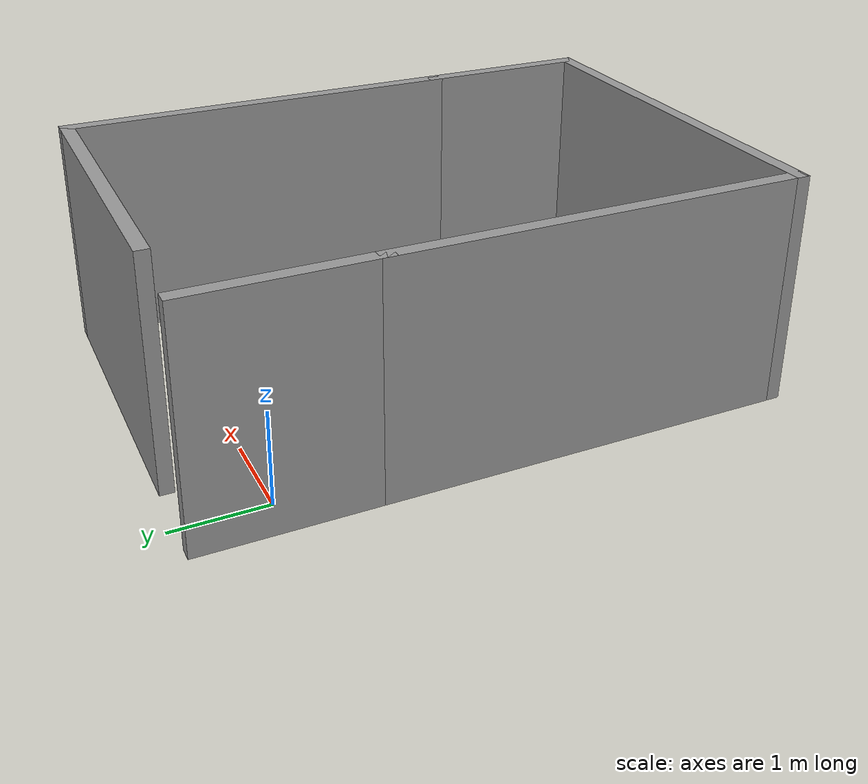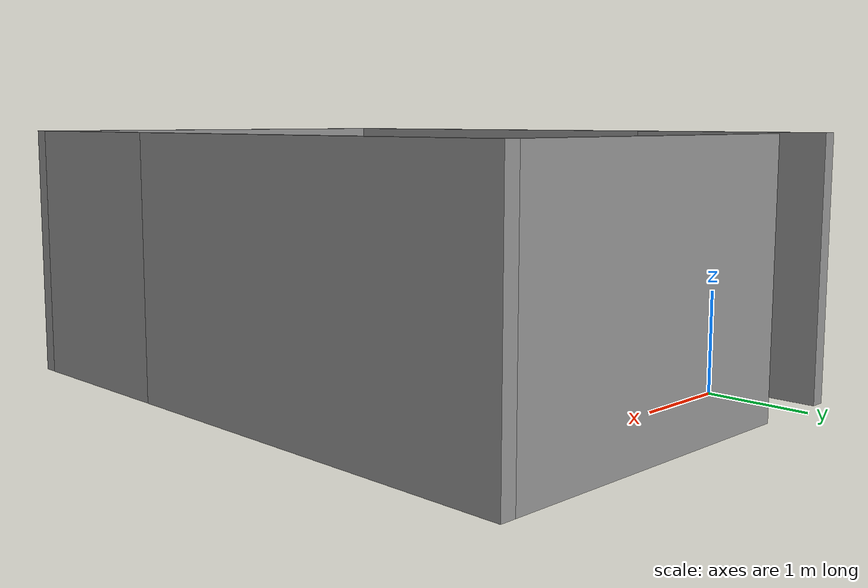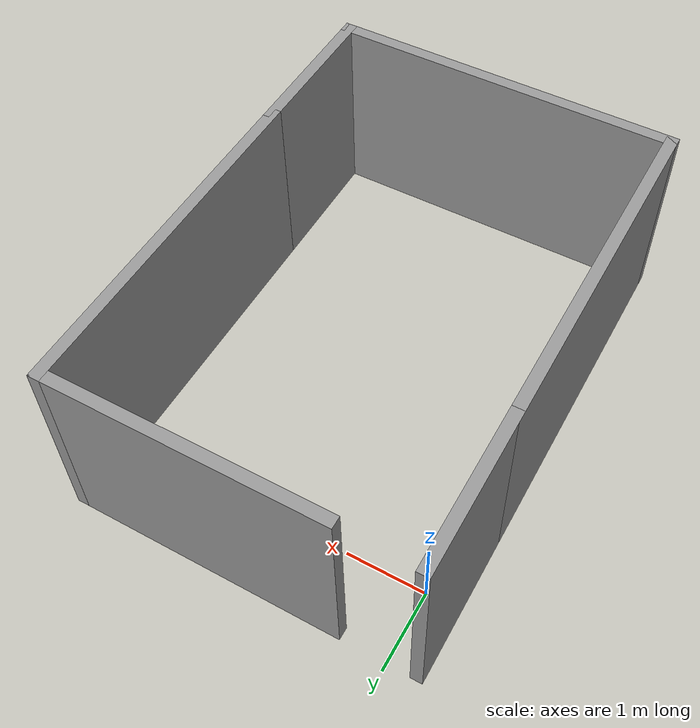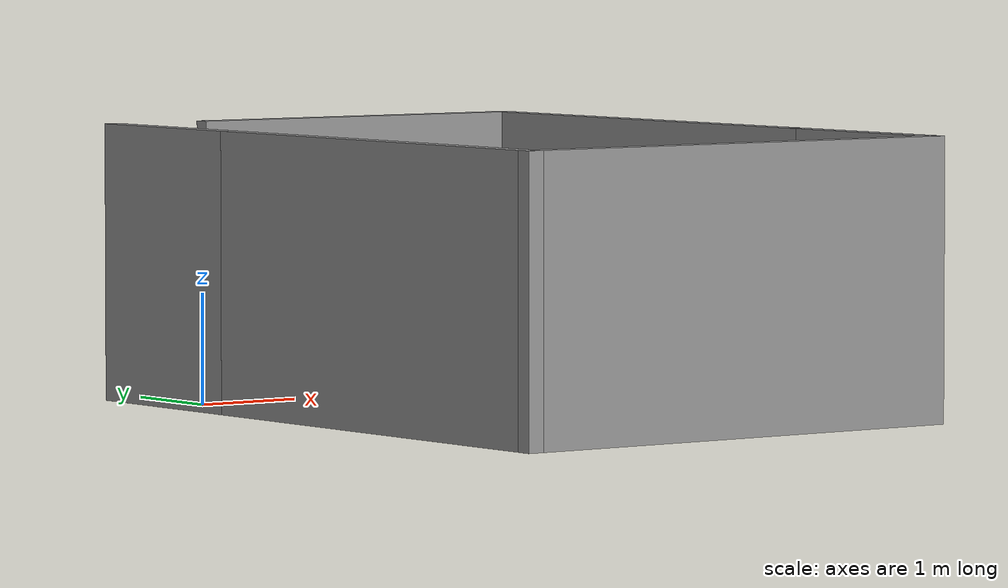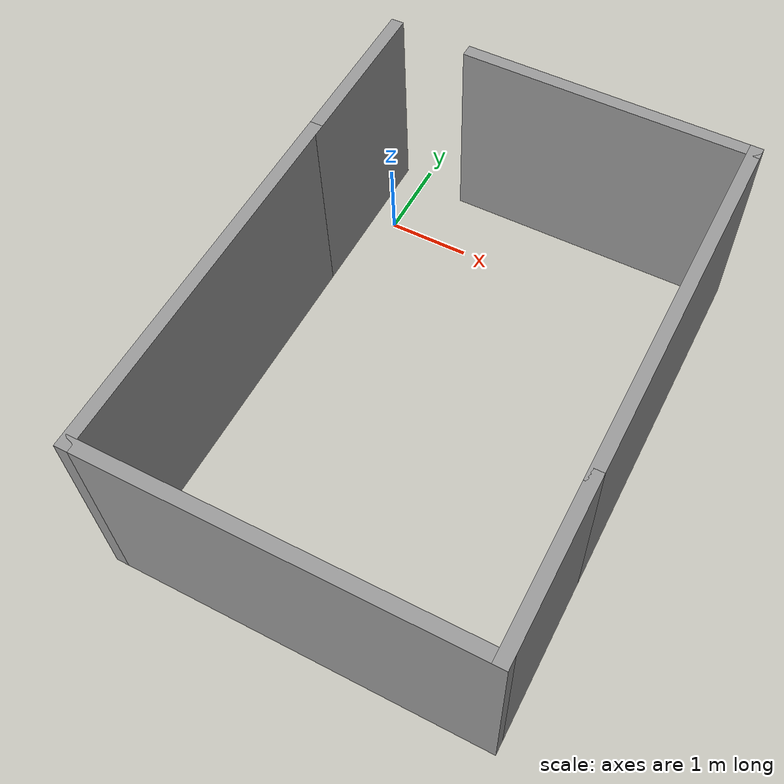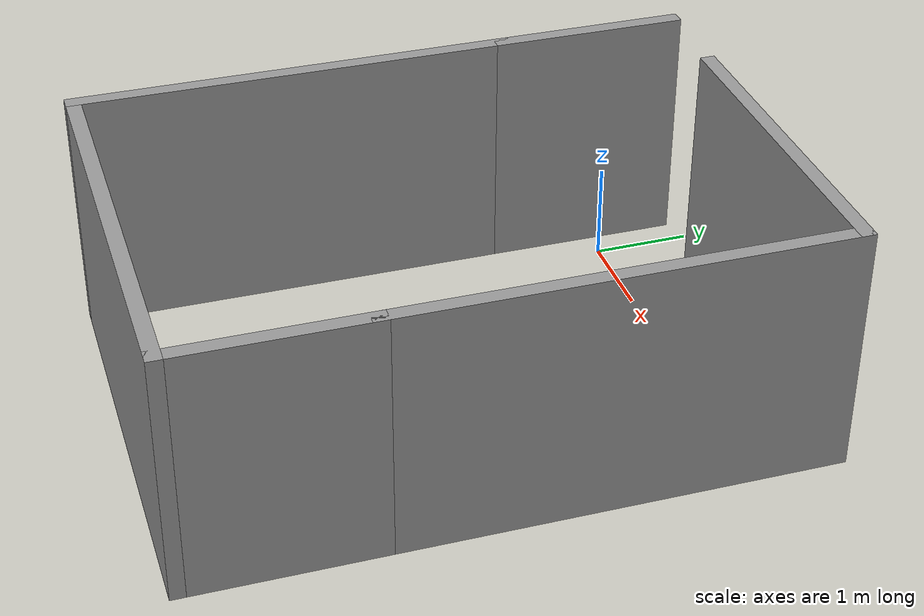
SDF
<?xml version='1.0'?>
<sdf version='1.7'>
  <model name='projeKare'>
    <pose>1.815 -2.26 0 0 -0 0</pose>
    <link name='Wall_11'>
      <collision name='Wall_11_Collision'>
        <geometry>
          <box>
            <size>4.5 0.15 2.5</size>
          </box>
        </geometry>
        <pose>0 0 1.25 0 -0 0</pose>
      </collision>
      <visual name='Wall_11_Visual'>
        <pose>0 0 1.25 0 -0 0</pose>
        <geometry>
          <box>
            <size>4.5 0.15 2.5</size>
          </box>
        </geometry>
        <material>
          <script>
            <uri>file://media/materials/scripts/gazebo.material</uri>
            <name>Gazebo/Grey</name>
          </script>
          <ambient>1 1 1 1</ambient>
        </material>
        <meta>
          <layer>0</layer>
        </meta>
      </visual>
      <pose>0 -3.1 0 0 -0 3.14159</pose>
    </link>
    <link name='Wall_13'>
      <collision name='Wall_13_Collision'>
        <geometry>
          <box>
            <size>4.5 0.15 2.5</size>
          </box>
        </geometry>
        <pose>0 0 1.25 0 -0 0</pose>
      </collision>
      <visual name='Wall_13_Visual'>
        <pose>0 0 1.25 0 -0 0</pose>
        <geometry>
          <box>
            <size>4.5 0.15 2.5</size>
          </box>
        </geometry>
        <material>
          <script>
            <uri>file://media/materials/scripts/gazebo.material</uri>
            <name>Gazebo/Grey</name>
          </script>
          <ambient>1 1 1 1</ambient>
        </material>
        <meta>
          <layer>0</layer>
        </meta>
      </visual>
      <pose>-2.175 -0.925 0 0 -0 1.5708</pose>
    </link>
    <link name='Wall_15'>
      <collision name='Wall_15_Collision'>
        <geometry>
          <box>
            <size>2 0.15 2.5</size>
          </box>
        </geometry>
        <pose>0 0 1.25 0 -0 0</pose>
      </collision>
      <visual name='Wall_15_Visual'>
        <pose>0 0 1.25 0 -0 0</pose>
        <geometry>
          <box>
            <size>2 0.15 2.5</size>
          </box>
        </geometry>
        <material>
          <script>
            <uri>file://media/materials/scripts/gazebo.material</uri>
            <name>Gazebo/Grey</name>
          </script>
          <ambient>1 1 1 1</ambient>
        </material>
        <meta>
          <layer>0</layer>
        </meta>
      </visual>
      <pose>-2.175 2.175 0 0 -0 1.5708</pose>
    </link>
    <link name='Wall_17'>
      <collision name='Wall_17_Collision'>
        <geometry>
          <box>
            <size>3.5 0.15 2.5</size>
          </box>
        </geometry>
        <pose>0 0 1.25 0 -0 0</pose>
      </collision>
      <visual name='Wall_17_Visual'>
        <pose>0 0 1.25 0 -0 0</pose>
        <geometry>
          <box>
            <size>3.5 0.15 2.5</size>
          </box>
        </geometry>
        <material>
          <script>
            <uri>file://media/materials/scripts/gazebo.material</uri>
            <name>Gazebo/Grey</name>
          </script>
          <ambient>1 1 1 1</ambient>
        </material>
        <meta>
          <layer>0</layer>
        </meta>
      </visual>
      <pose>0.5 3.1 0 0 -0 3.14159</pose>
    </link>
    <link name='Wall_5'>
      <collision name='Wall_5_Collision'>
        <geometry>
          <box>
            <size>4.5 0.15 2.5</size>
          </box>
        </geometry>
        <pose>0 0 1.25 0 -0 0</pose>
      </collision>
      <visual name='Wall_5_Visual'>
        <pose>0 0 1.25 0 -0 0</pose>
        <geometry>
          <box>
            <size>4.5 0.15 2.5</size>
          </box>
        </geometry>
        <material>
          <script>
            <uri>file://media/materials/scripts/gazebo.material</uri>
            <name>Gazebo/Grey</name>
          </script>
          <ambient>1 1 1 1</ambient>
        </material>
        <meta>
          <layer>0</layer>
        </meta>
      </visual>
      <pose>2.175 0.925 0 0 -0 -1.5708</pose>
    </link>
    <link name='Wall_9'>
      <collision name='Wall_9_Collision'>
        <geometry>
          <box>
            <size>2 0.15 2.5</size>
          </box>
        </geometry>
        <pose>0 0 1.25 0 -0 0</pose>
      </collision>
      <visual name='Wall_9_Visual'>
        <pose>0 0 1.25 0 -0 0</pose>
        <geometry>
          <box>
            <size>2 0.15 2.5</size>
          </box>
        </geometry>
        <material>
          <script>
            <uri>file://media/materials/scripts/gazebo.material</uri>
            <name>Gazebo/Grey</name>
          </script>
          <ambient>1 1 1 1</ambient>
        </material>
        <meta>
          <layer>0</layer>
        </meta>
      </visual>
      <pose>2.175 -2.175 0 0 -0 -1.5708</pose>
    </link>
    <static>1</static>
  </model>
</sdf>
